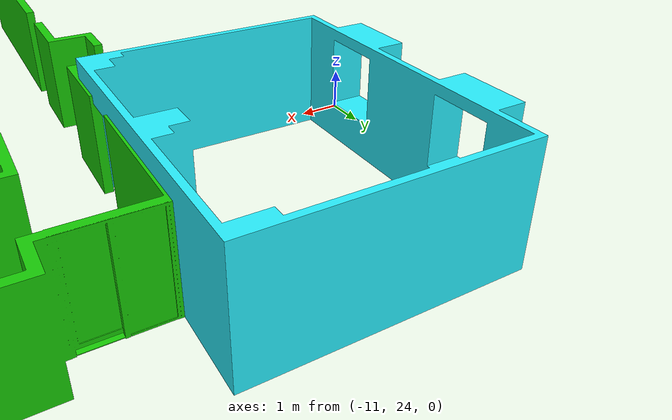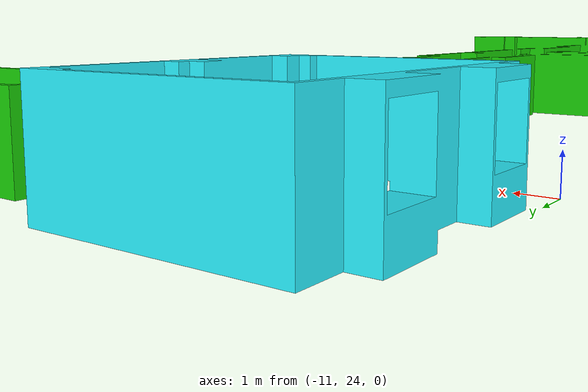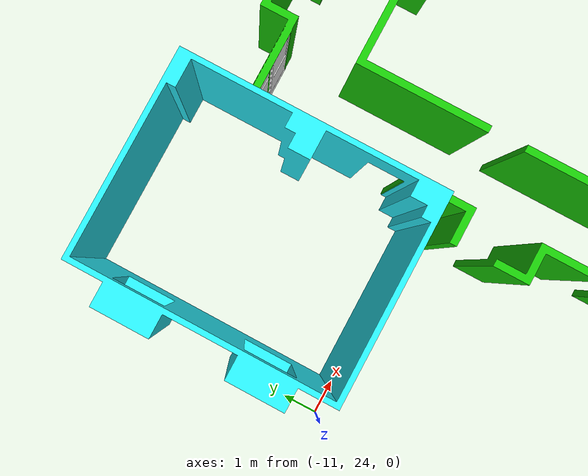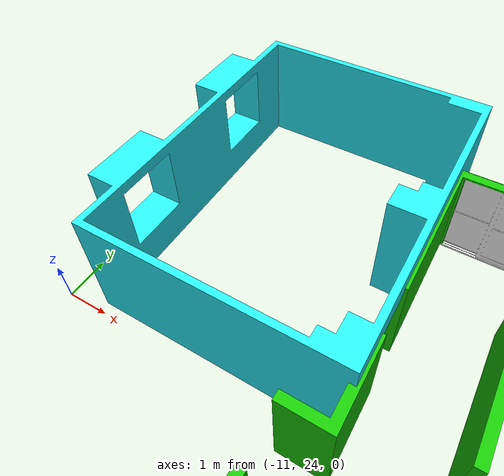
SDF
<?xml version="1.0"?>

<sdf version='1.6'>
  <model name='ROOM329_Hallway'>
    <!-- HALLWAY LINK SDF -->
    <link name='SLAM_Hallway'>
      <pose frame=''>0 0 1.1929 0 -0 3.142 </pose>
      <inertial>
        <pose frame=''>-4.1092 -1.38 -2.0568 0 -0 0</pose>
        <mass>255709</mass>
        <inertia>
          <ixx>8.1871e+06</ixx>
          <ixy>-6.35011e-11</ixy>
          <ixz>977800</ixz>
          <iyy>8.6249e+06</iyy>
          <iyz>-5.11868e-10</iyz>
          <izz>470450</izz>
        </inertia>
      </inertial>
      <collision name='SLAM_Hallway_collision'>
        <pose frame=''>0 0 0 0 -0 0</pose>
        <geometry>
          <mesh>
            <scale>1 1 1</scale>
            <uri>model://SLAM_Hallway/meshes/SLAM_Hallway.dae</uri>
          </mesh>
        </geometry>
      </collision>
      <visual name='SLAM_Hallway_visual'>
        <pose frame=''>0 0 0 0 -0 0</pose>
        <geometry>
          <mesh>
            <scale>1 1 1</scale>
            <uri>model://SLAM_Hallway/meshes/SLAM_Hallway.dae</uri>
          </mesh>
        </geometry>
      </visual>
    </link>

    <!-- ROOM 329 SDF LINK -->
    <link name='Robotics_room'>
      <pose frame=''>-7.2332 27.9420 0.01 0 0 0 -0 0</pose>
      <inertial>
        <pose frame=''>0.0031 -0.0622 1.2969 0 -0 0</pose>
        <mass>15710</mass>
        <inertia>
          <ixx>122580</ixx>
          <ixy>2047.8</ixy>
          <ixz>-4128</ixz>
          <iyy>111680</iyy>
          <iyz>-272.43</iyz>
          <izz>212140</izz>
        </inertia>
      </inertial>
      <collision name='Robotics_room_collision'>
        <pose frame=''>0 0 0 1.5708 -0 0</pose>
        <geometry>
          <mesh>
            <scale>1 1 1</scale>
            <uri>model://Robotics_room/meshes/Robotics_room.dae</uri>
          </mesh>
        </geometry>
      </collision>
      <visual name='Robotics_room_visual'>
        <pose frame=''>0 0 0 1.5708 -0 0</pose>
        <geometry>
          <mesh>
            <scale>1 1 1</scale>
            <uri>model://Robotics_room/meshes/Robotics_room.dae</uri>
          </mesh>
        </geometry>
      </visual>
    </link>

<!-- Adding joints -->
    <joint name="Hallway_to_world" type="fixed">
      <parent>world</parent>
      <child>SLAM_Hallway</child>
      <pose>0 0 0 0 0 0</pose>
    </joint>

    <joint name="Room_to_hallway" type="fixed">
      <parent>SLAM_Hallway</parent>
      <child>Robotics_room</child>
      <pose>-7.2332 27.9420 0 0 0 0</pose>
    </joint>

  <static>false</static>
  </model>
</sdf>
